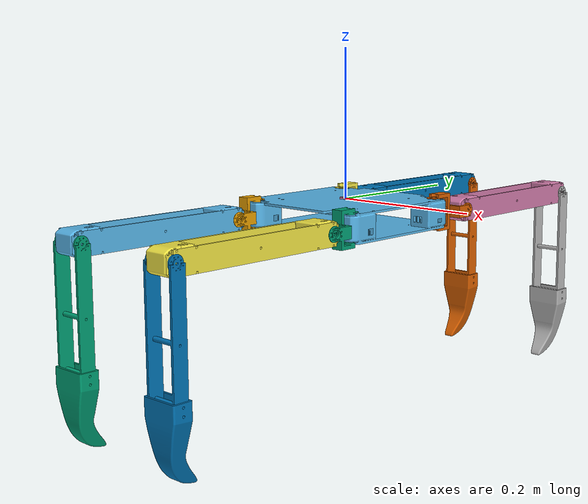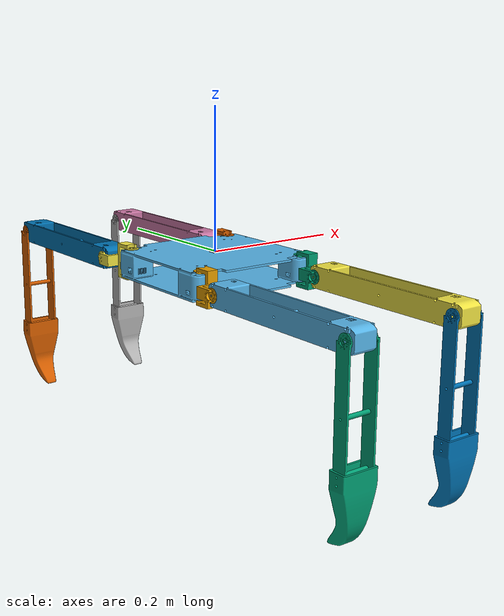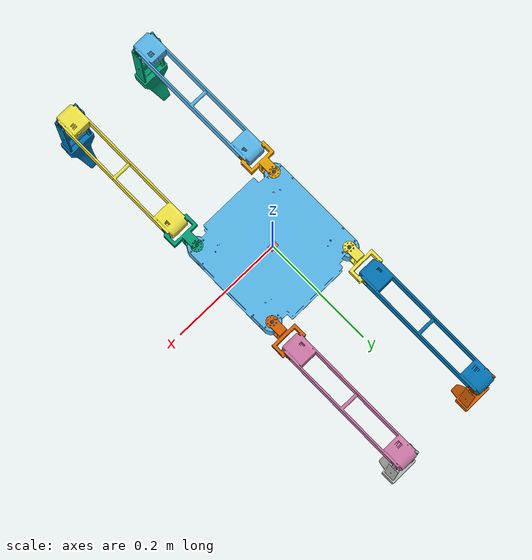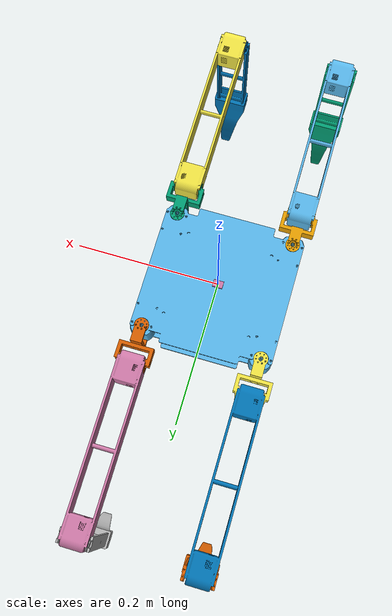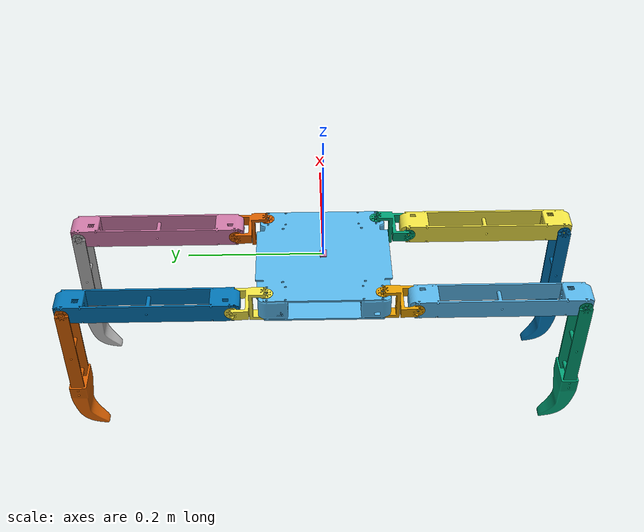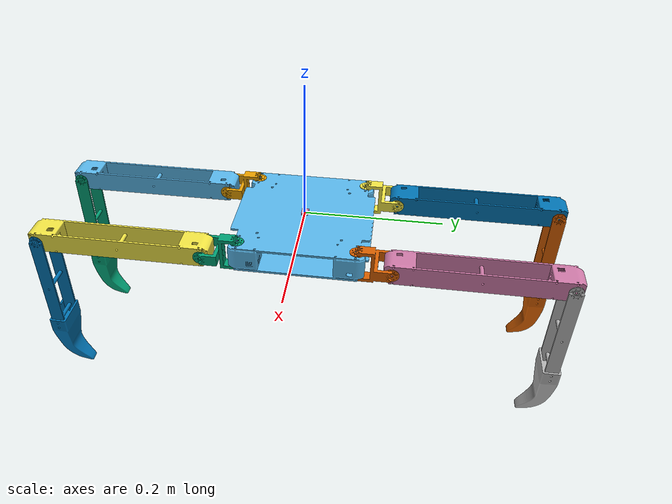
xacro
<?xml version="1.0"?>
<robot name="mr2" xmlns:xacro="http://www.ros.org/wiki/xacro">

  <xacro:include filename="$(find mr2_description)/urdf/base/base_2.urdf.xacro"/>
  <xacro:include filename="$(find mr2_description)/urdf/legs/leg_2.urdf.xacro"/>
  <xacro:include filename="$(find mr2_description)/urdf/sensors/imu/imu.urdf.xacro"/>

  <!-- =============== Links & Joints =============== -->

  <!-- Base -->
  <link name="base_footprint"/>
  <xacro:base parent="base_footprint">
    <origin xyz="0 0 0"/>
  </xacro:base>

  <!-- Legs -->
  <!-- Front right leg -->
  <xacro:leg prefix="fr" parent="base_link">
    <origin rpy="0 ${M_PI} 0" xyz="0.084 -0.084 -0.0396"/>
  </xacro:leg>

  <!-- Front left leg -->
  <xacro:leg prefix="fl" parent="base_link">
    <origin rpy="0 ${M_PI} ${M_PI}" xyz="0.084 0.084 -0.0396"/>
  </xacro:leg>

  <!-- Rear right leg -->
  <xacro:leg prefix="rr" parent="base_link">
    <origin rpy="0 ${M_PI} 0" xyz="-0.084 -0.084 -0.0396"/>
  </xacro:leg>

  <!-- Rear left leg -->
  <xacro:leg prefix="rl" parent="base_link">
    <origin rpy="0 ${M_PI} ${M_PI}" xyz="-0.084 0.084 -0.0396"/>
  </xacro:leg>

  <!-- Sensors -->
  <!-- IMU -->
  <xacro:imu id_num="1" parent="base_link">
    <origin xyz="0 0 0" rpy="0 0 0"/>
  </xacro:imu>

  <!-- =============== Transmission ===============-->

  <xacro:legs_trans prefix="fr"/>
  <xacro:legs_trans prefix="fl"/>
  <xacro:legs_trans prefix="rr"/>
  <xacro:legs_trans prefix="rl"/>

  <!-- =============== Gazebo ===============-->

  <gazebo>
    <plugin name="gazebo_ros_control" filename="libgazebo_ros_control.so">
      <robotNamespace>mr2</robotNamespace>
    </plugin>
  </gazebo>

  <!-- Base -->
  <xacro:base_gazebo/>

  <!-- Legs -->
  <xacro:legs_gazebo prefix="fr"/>
  <xacro:legs_gazebo prefix="fl"/>
  <xacro:legs_gazebo prefix="rr"/>
  <xacro:legs_gazebo prefix="rl"/>

  <!-- IMU -->
  <xacro:imu_gazebo id_num="1"/>
</robot>

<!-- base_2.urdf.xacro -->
<robot xmlns:xacro="http://www.ros.org/wiki/xacro">

  <xacro:include filename="$(find mr2_description)/urdf/base/base_2.gazebo.xacro"/>

  <xacro:macro name="base" params="parent *joint_origin">
    <joint name="base_link_joint" type="fixed">
      <xacro:insert_block name="joint_origin"/>
      <parent link="${parent}"/>
      <child link="base_link"/>
    </joint>

    <link name="base_link">
      <visual>
        <origin xyz="0.00000 0.00000 0.00000" rpy="0.00000 0.00000 0.00000"/>
        <geometry>
          <mesh filename="package://mr2_description/meshes/base_2.STL"/>
        </geometry>
      </visual>
      <collision>
        <origin xyz="0.00000 0.00000 0.00000" rpy="0.00000 0.00000 0.00000"/>
        <geometry>
          <mesh filename="package://mr2_description/meshes/base_2.STL"/>
        </geometry>
      </collision>
      <inertial>
        <origin xyz="0.00000 0.00000 -0.01961" rpy="0.00000 1.57079 0.78540"/>
        <mass value="0.27998"/>
        <inertia
          ixx="0.00151230452" ixy="0.00000000000" ixz="0.00000000000"
          iyy="0.00188684807" iyz="0.00000000000"
          izz="0.00333368576"/>
      </inertial>
    </link>
  </xacro:macro>

</robot>

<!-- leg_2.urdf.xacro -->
<robot xmlns:xacro="http://www.ros.org/wiki/xacro">

  <xacro:include filename="$(find mr2_description)/urdf/legs/leg1_2.urdf.xacro"/>
  <xacro:include filename="$(find mr2_description)/urdf/legs/leg2_2.urdf.xacro"/>
  <xacro:include filename="$(find mr2_description)/urdf/legs/leg3_2.urdf.xacro"/>
  <xacro:include filename="$(find mr2_description)/urdf/legs/leg_2.gazebo.xacro"/>
  <xacro:include filename="$(find mr2_description)/urdf/legs/leg_2.transmission.xacro"/>

  <xacro:macro name="leg" params="prefix parent *joint_origin">
    <xacro:leg1 prefix="${prefix}" parent="${parent}">
      <xacro:insert_block name="joint_origin"/>
    </xacro:leg1>
    <xacro:leg2 prefix="${prefix}" parent="${prefix}_leg1_link">
      <origin rpy="0 0 0" xyz="0.0198 -0.050 -0.0198"/>
    </xacro:leg2>
    <xacro:leg3 prefix="${prefix}" parent="${prefix}_leg2_link">
      <origin rpy="0 0 0" xyz="-0.039 -0.242 0"/>
    </xacro:leg3>
  </xacro:macro>

</robot>

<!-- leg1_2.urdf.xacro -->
<robot xmlns:xacro="http://www.ros.org/wiki/xacro">

  <xacro:include filename="$(find mr2_description)/urdf/servo_motors/servo_motors.xacro"/>

  <xacro:macro name="leg1" params="prefix parent *joint_origin">
    <joint name="${prefix}_leg1_joint" type="revolute">
      <xacro:insert_block name="joint_origin"/>
      <axis xyz="0 0 1"/>
      <xacro:KRS4034HVICS_limit/>
      <parent link="${parent}"/>
      <child link="${prefix}_leg1_link"/>
    </joint>

    <link name="${prefix}_leg1_link">
      <visual>
        <origin rpy="0.00000 0.00000 0.00000" xyz="0.00000 0.00000 0.00000"/>
        <geometry>
          <mesh filename="package://mr2_description/meshes/leg1_2.STL"/>
        </geometry>
      </visual>
      <collision>
        <origin rpy="0.00000 0.00000 0.00000" xyz="0.00000 0.00000 0.00000"/>
        <geometry>
          <mesh filename="package://mr2_description/meshes/leg1_2.STL"/>
        </geometry>
      </collision>
      <inertial>
        <origin rpy="-0.14190 2.35619 1.42899" xyz="-0.00006 -0.02500 -0.01987"/>
        <mass value="0.01599"/>
        <inertia
          ixx="0.00000569169" ixy="0.00000000000" ixz="0.00000000000"
          iyy="0.00000586951" iyz="0.00000000000"
          izz="0.00000587725"/>
      </inertial>
    </link>
  </xacro:macro>

</robot>

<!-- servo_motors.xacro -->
<robot xmlns:xacro="http://www.ros.org/wiki/xacro">

  <xacro:include filename="$(find mr2_description)/urdf/common.xacro"/>

  <!-- KRS-3301 ICS -->
  <xacro:macro name="KRS3301ICS_limit" params="lower_limit:=${-(3*M_PI)/4} upper_limit:=${(3*M_PI)/4}">
    <limit lower="${lower_limit}" upper="${upper_limit}" effort="${6.0*gravity*0.01}" velocity="${(M_PI/3)/0.14}"/>
  </xacro:macro>

  <!-- KRS-3302 ICS -->
  <xacro:macro name="KRS3302ICS_limit" params="lower_limit:=${-(3*M_PI)/4} upper_limit:=${(3*M_PI)/4}">
    <limit lower="${lower_limit}" upper="${upper_limit}" effort="${6.7*gravity*0.01}" velocity="${(M_PI/3)/0.16}"/>
  </xacro:macro>

  <!-- KRS-3304R2 ICS -->
  <xacro:macro name="KRS3304R2ICS_limit" params="lower_limit:=${-(3*M_PI)/4} upper_limit:=${(3*M_PI)/4}">
    <limit lower="${lower_limit}" upper="${upper_limit}" effort="${13.9*gravity*0.01}" velocity="${(M_PI/3)/0.11}"/>
  </xacro:macro>

  <!-- KRS-4034HV ICS -->
  <xacro:macro name="KRS4034HVICS_limit" params="lower_limit:=${-(3*M_PI)/4} upper_limit:=${(3*M_PI)/4}">
    <limit lower="${lower_limit}" upper="${upper_limit}" effort="${41.7*gravity*0.01}" velocity="${(M_PI/3)/0.17}"/>
  </xacro:macro>

  <!-- KRS-6003R2HV ICS -->
  <xacro:macro name="KRS6003R2HVICS_limit" params="lower_limit:=${-(3*M_PI)/4} upper_limit:=${(3*M_PI)/4}">
    <limit lower="${lower_limit}" upper="${upper_limit}" effort="${67*gravity*0.01}" velocity="${(M_PI/3)/0.22}"/>
  </xacro:macro>

  <!-- imaginary servo for test -->
  <xacro:macro name="servo_limit" params="lower_limit:=${-(3*M_PI)/4} upper_limit:=${(3*M_PI)/4}">
    <limit lower="${lower_limit}" upper="${upper_limit}" effort="1000" velocity="${(M_PI/3)/0.22}"/>
  </xacro:macro>

</robot>

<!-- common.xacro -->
<robot xmlns:xacro="http://www.ros.org/wiki/xacro">
  <xacro:property name="M_PI" value="3.14159274"/>
  <xacro:property name="gravity" value="9.80665"/>

  <xacro:macro name="box_inertial" params="mass height width depth">
    <mass value="${mass}"/>
    <inertia ixx="${(mass*(width*width + depth*depth))/12}" ixy="0" ixz="0"
             iyy="${(mass*(height*height + depth*depth))/12}" iyz="0"
             izz="${(mass*(height*height + width*width))/12}"/>
  </xacro:macro>
</robot>

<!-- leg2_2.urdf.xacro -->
<robot xmlns:xacro="http://www.ros.org/wiki/xacro">

  <xacro:include filename="$(find mr2_description)/urdf/servo_motors/servo_motors.xacro"/>

  <xacro:macro name="leg2" params="prefix parent *joint_origin">
    <joint name="${prefix}_leg2_joint" type="revolute">
      <xacro:insert_block name="joint_origin"/>
      <axis xyz="1 0 0"/>
      <xacro:KRS4034HVICS_limit/>
      <parent link="${parent}"/>
      <child link="${prefix}_leg2_link"/>
    </joint>

    <link name="${prefix}_leg2_link">
      <visual>
        <origin rpy="0.00000 0.00000 0.00000" xyz="0.00000 0.00000 0.00000"/>
        <geometry>
          <mesh filename="package://mr2_description/meshes/leg2_2.STL"/>
        </geometry>
      </visual>
      <collision>
        <origin rpy="0.00000 0.00000 0.00000" xyz="0.00000 0.00000 0.00000"/>
        <geometry>
          <mesh filename="package://mr2_description/meshes/leg2_2.STL"/>
        </geometry>
      </collision>
      <inertial>
        <origin rpy="0.00000 0.00000 1.57079" xyz="-0.01969 -0.12100 0"/>
        <mass value="0.23699"/>
        <inertia
          ixx="0.00006523998" ixy="0.00000000000" ixz="0.00000000000"
          iyy="0.00205800016" iyz="0.00000000000"
          izz="0.00208625265"/>
      </inertial>
    </link>
  </xacro:macro>

</robot>

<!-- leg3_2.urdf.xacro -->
<robot xmlns:xacro="http://www.ros.org/wiki/xacro">

  <xacro:include filename="$(find mr2_description)/urdf/servo_motors/servo_motors.xacro"/>

  <xacro:macro name="leg3" params="prefix parent *joint_origin">
    <joint name="${prefix}_leg3_joint" type="revolute">
      <xacro:insert_block name="joint_origin"/>
      <axis xyz="1 0 0"/>
      <xacro:KRS4034HVICS_limit/>
      <parent link="${parent}"/>
      <child link="${prefix}_leg3_link"/>
    </joint>

    <link name="${prefix}_leg3_link">
      <visual>
        <origin rpy="0.00000 0.00000 0.00000" xyz="0.00000 0.00000 0.00000"/>
        <geometry>
          <mesh filename="package://mr2_description/meshes/leg3_2.STL"/>
        </geometry>
      </visual>
      <collision>
        <origin rpy="0.00000 0.00000 0.00000" xyz="0.00000 0.00000 0.00000"/>
        <geometry>
          <mesh filename="package://mr2_description/meshes/leg3_2.STL"/>
        </geometry>
      </collision>
      <inertial>
        <origin rpy="0.00000 1.59079 -1.57079" xyz="0.01987 0.00114 0.14678"/>
        <mass value="0.13257"/>
        <inertia
          ixx="0.00004387620" ixy="0.00000000000" ixz="0.00000000000"
          iyy="0.00059834039" iyz="0.00000000000"
          izz="0.00062747138"/>
      </inertial>
    </link>
  </xacro:macro>

</robot>

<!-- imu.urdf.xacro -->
<robot xmlns:xacro="http://www.ros.org/wiki/xacro">

  <xacro:include filename="$(find mr2_description)/urdf/common.xacro"/>
  <xacro:include filename="$(find mr2_description)/urdf/sensors/imu/imu.gazebo.xacro"/>

  <xacro:macro name="imu" params="id_num parent *joint_origin">
    <joint name="imu${id_num}_joint" type="fixed">
      <xacro:insert_block name="joint_origin"/>
      <parent link="${parent}"/>
      <child link="imu${id_num}_link"/>
    </joint>

    <link name="imu${id_num}_link">
      <visual>
        <geometry>
          <box size="0.014 0.010 0.004"/>
        </geometry>
      </visual>
      <collision>
        <geometry>
          <box size="0.014 0.010 0.004"/>
        </geometry>
      </collision>
      <inertial>
        <box_inertial mass="0.01" height="0.014" width="0.010" depth="0.004"/>
      </inertial>
    </link>
  </xacro:macro>

</robot>
